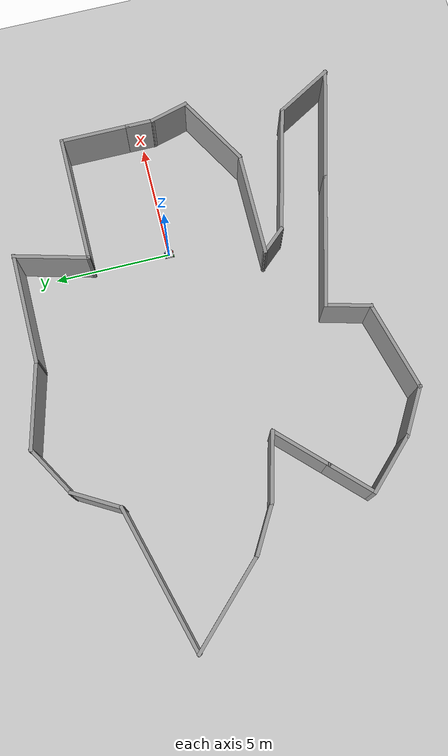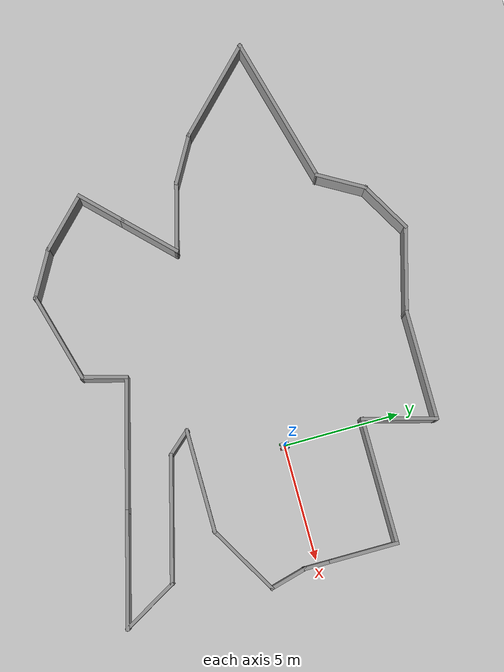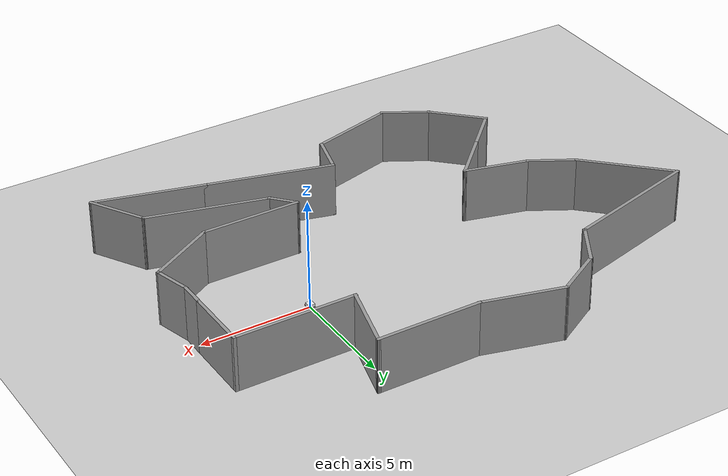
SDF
<sdf version="1.7">
 <world name="default">
  <light name="sun" type="directional">
   <pose>0 0 10 0 -0 0</pose>
   <diffuse>0.8 0.8 0.8 1</diffuse>
   <specular>0.2 0.2 0.2 1</specular>
   <attenuation>
    <range>1000</range>
    <constant>0.9</constant>
    <linear>0.01</linear>
    <quadratic>0.001</quadratic>
   </attenuation>
   <direction>-0.5 0.1 -0.9</direction>
   <spot><inner_angle>0</inner_angle><outer_angle>0</outer_angle><falloff>0</falloff></spot>
  </light>
  <model name="ground_plane">
   <static>1</static>
   <link name="link">
    <collision name="collision">
     <geometry><plane><normal>0 0 1</normal><size>100 100</size></plane></geometry>
     <surface><friction><ode><mu>100</mu><mu2>50</mu2></ode></friction></surface>
    </collision>
    <visual name="visual">
     <cast_shadows>0</cast_shadows>
     <geometry><plane><normal>0 0 1</normal><size>100 100</size></plane></geometry>
     <material>
      <script><uri>file://media/materials/scripts/gazebo.material</uri><name>Gazebo/Grey</name></script>
     </material>
    </visual>
   </link>
  </model>
  <gravity>0 0 -9.8</gravity>
  <magnetic_field>6e-06 2.3e-05 -4.2e-05</magnetic_field>
  <atmosphere type="adiabatic"/>
  <physics type="ode">
   <max_step_size>0.001</max_step_size>
   <real_time_factor>1</real_time_factor>
   <real_time_update_rate>1000</real_time_update_rate>
  </physics>
  <scene><ambient>0.4 0.4 0.4 1</ambient><background>0.7 0.7 0.7 1</background><shadows>1</shadows></scene>
  <audio><device>default</device></audio>
  <spherical_coordinates>
   <surface_model>EARTH_WGS84</surface_model>
   <latitude_deg>0</latitude_deg>
   <longitude_deg>0</longitude_deg>
   <elevation>0</elevation>
   <heading_deg>0</heading_deg>
  </spherical_coordinates>
  <model name="my_bot">
   <link name="base_link">
    <inertial>
     <pose>0 0 0.088333 0 -0 0</pose>
     <mass>0.6</mass>
     <inertia>
      <ixx>0.00530979</ixx>
      <ixy>0</ixy>
      <ixz>0</ixz>
      <iyy>0.00530979</iyy>
      <iyz>0</iyz>
      <izz>0.00751125</izz>
     </inertia>
    </inertial>
    <collision name="base_link_fixed_joint_lump__chassis_collision">
     <pose>0 0 0.075 0 -0 0</pose>
     <geometry><box><size>0.3 0.3 0.15</size></box></geometry>
    </collision>
    <collision name="base_link_fixed_joint_lump__laser_frame_collision_1">
     <pose>0 0 0.155 0 -0 0</pose>
     <geometry><cylinder><length>0.005</length><radius>0.015</radius></cylinder></geometry>
    </collision>
    <visual name="base_link_fixed_joint_lump__chassis_visual">
     <pose>0 0 0.075 0 -0 0</pose>
     <geometry><box><size>0.3 0.3 0.15</size></box></geometry>
     <material>
      <script><name>Gazebo/White</name><uri>file://media/materials/scripts/gazebo.material</uri></script>
     </material>
    </visual>
    <visual name="base_link_fixed_joint_lump__laser_frame_visual_1">
     <pose>0 0 0.155 0 -0 0</pose>
     <geometry><cylinder><length>0.005</length><radius>0.015</radius></cylinder></geometry>
     <material>
      <script><name>Gazebo/Black</name><uri>file://media/materials/scripts/gazebo.material</uri></script>
     </material>
    </visual>
    <sensor name="laser" type="ray">
     <visualize>1</visualize>
     <update_rate>10</update_rate>
     <ray>
      <scan>
       <horizontal>
        <samples>1080</samples>
        <min_angle>-3.14</min_angle>
        <max_angle>3.14</max_angle>
        <resolution>1</resolution>
       </horizontal>
       <vertical><samples>1</samples><min_angle>0</min_angle><max_angle>0</max_angle></vertical>
      </scan>
      <range><min>0.3</min><max>12</max></range>
     </ray>
     <plugin name="laser_controller" filename="libgazebo_ros_ray_sensor.so">
      <ros><argument>~/out:=scan</argument></ros>
      <output_type>sensor_msgs/LaserScan</output_type>
      <frame_name>laser_frame</frame_name>
     </plugin>
     <pose>0 0 0.155 0 -0 0</pose>
    </sensor>
   </link>
   <joint name="back_left_wheel_joint" type="revolute">
    <pose relative_to="base_link">-0.1 0.175 0 -1.5708 0 0</pose>
    <parent>base_link</parent>
    <child>back_left_wheel</child>
    <axis>
     <xyz>0 0 1</xyz>
     <limit><lower>-1e+16</lower><upper>1e+16</upper></limit>
     <dynamics><spring_reference>0</spring_reference><spring_stiffness>0</spring_stiffness></dynamics>
    </axis>
   </joint>
   <link name="back_left_wheel">
    <pose relative_to="back_left_wheel_joint">0 0 0 0 -0 0</pose>
    <inertial>
     <mass>0.1</mass>
     <inertia>
      <ixx>8.33333e-05</ixx>
      <ixy>0</ixy>
      <ixz>0</ixz>
      <iyy>8.33333e-05</iyy>
      <iyz>0</iyz>
      <izz>0.000125</izz>
     </inertia>
    </inertial>
    <collision name="back_left_wheel_collision">
     <geometry><cylinder><length>0.04</length><radius>0.05</radius></cylinder></geometry>
    </collision>
    <visual name="back_left_wheel_visual">
     <geometry><cylinder><length>0.04</length><radius>0.05</radius></cylinder></geometry>
     <material>
      <script><name>Gazebo/Gray</name><uri>file://media/materials/scripts/gazebo.material</uri></script>
     </material>
    </visual>
   </link>
   <joint name="back_right_wheel_joint" type="revolute">
    <pose relative_to="base_link">-0.1 -0.175 0 1.5708 -0 0</pose>
    <parent>base_link</parent>
    <child>back_right_wheel</child>
    <axis>
     <xyz>0 0 -1</xyz>
     <limit><lower>-1e+16</lower><upper>1e+16</upper></limit>
     <dynamics><spring_reference>0</spring_reference><spring_stiffness>0</spring_stiffness></dynamics>
    </axis>
   </joint>
   <link name="back_right_wheel">
    <pose relative_to="back_right_wheel_joint">0 0 0 0 -0 0</pose>
    <inertial>
     <mass>0.1</mass>
     <inertia>
      <ixx>8.33333e-05</ixx>
      <ixy>0</ixy>
      <ixz>0</ixz>
      <iyy>8.33333e-05</iyy>
      <iyz>0</iyz>
      <izz>0.000125</izz>
     </inertia>
    </inertial>
    <collision name="back_right_wheel_collision">
     <geometry><cylinder><length>0.04</length><radius>0.05</radius></cylinder></geometry>
    </collision>
    <visual name="back_right_wheel_visual">
     <geometry><cylinder><length>0.04</length><radius>0.05</radius></cylinder></geometry>
     <material>
      <script><name>Gazebo/Green</name><uri>file://media/materials/scripts/gazebo.material</uri></script>
     </material>
    </visual>
   </link>
   <joint name="front_left_wheel_joint" type="revolute">
    <pose relative_to="base_link">0.1 0.175 0 -1.5708 0 0</pose>
    <parent>base_link</parent>
    <child>front_left_wheel</child>
    <axis>
     <xyz>0 0 1</xyz>
     <limit><lower>-1e+16</lower><upper>1e+16</upper></limit>
     <dynamics><spring_reference>0</spring_reference><spring_stiffness>0</spring_stiffness></dynamics>
    </axis>
   </joint>
   <link name="front_left_wheel">
    <pose relative_to="front_left_wheel_joint">0 0 0 0 -0 0</pose>
    <inertial>
     <mass>0.1</mass>
     <inertia>
      <ixx>8.33333e-05</ixx>
      <ixy>0</ixy>
      <ixz>0</ixz>
      <iyy>8.33333e-05</iyy>
      <iyz>0</iyz>
      <izz>0.000125</izz>
     </inertia>
    </inertial>
    <collision name="front_left_wheel_collision">
     <geometry><cylinder><length>0.04</length><radius>0.05</radius></cylinder></geometry>
    </collision>
    <visual name="front_left_wheel_visual">
     <geometry><cylinder><length>0.04</length><radius>0.05</radius></cylinder></geometry>
     <material>
      <script><name>Gazebo/Blue</name><uri>file://media/materials/scripts/gazebo.material</uri></script>
     </material>
    </visual>
   </link>
   <joint name="front_right_wheel_joint" type="revolute">
    <pose relative_to="base_link">0.1 -0.175 0 1.5708 -0 0</pose>
    <parent>base_link</parent>
    <child>front_right_wheel</child>
    <axis>
     <xyz>0 0 -1</xyz>
     <limit><lower>-1e+16</lower><upper>1e+16</upper></limit>
     <dynamics><spring_reference>0</spring_reference><spring_stiffness>0</spring_stiffness></dynamics>
    </axis>
   </joint>
   <link name="front_right_wheel">
    <pose relative_to="front_right_wheel_joint">0 0 0 0 -0 0</pose>
    <inertial>
     <mass>0.1</mass>
     <inertia>
      <ixx>8.33333e-05</ixx>
      <ixy>0</ixy>
      <ixz>0</ixz>
      <iyy>8.33333e-05</iyy>
      <iyz>0</iyz>
      <izz>0.000125</izz>
     </inertia>
    </inertial>
    <collision name="front_right_wheel_collision">
     <geometry><cylinder><length>0.04</length><radius>0.05</radius></cylinder></geometry>
    </collision>
    <visual name="front_right_wheel_visual">
     <geometry><cylinder><length>0.04</length><radius>0.05</radius></cylinder></geometry>
     <material>
      <script><name>Gazebo/Red</name><uri>file://media/materials/scripts/gazebo.material</uri></script>
     </material>
    </visual>
   </link>
   <static>0</static>
   <plugin name="diff_drive" filename="libgazebo_ros_diff_drive.so">
    <left_joint>back_left_wheel_joint</left_joint>
    <right_joint>back_right_wheel_joint</right_joint>
    <wheel_separation>0.35</wheel_separation>
    <wheel_diameter>0.1</wheel_diameter>
    <max_wheel_torque>200</max_wheel_torque>
    <max_wheel_acceleration>10.0</max_wheel_acceleration>
    <odometry_frame>odom</odometry_frame>
    <robot_base_frame>base_link</robot_base_frame>
    <publish_odom>1</publish_odom>
    <publish_odom_tf>1</publish_odom_tf>
    <publish_wheel_tf>1</publish_wheel_tf>
   </plugin>
   <pose>0.000937 -0.000152 0.05 0 0 -0.000826</pose>
  </model>
  <model name="myWorldeiei">
   <pose>-5.50215 -0.569691 0 0 -0 0</pose>
   <link name="Wall_0">
    <collision name="Wall_0_Collision">
     <geometry><box><size>4.5 0.15 2.5</size></box></geometry>
     <pose>0 0 1.25 0 -0 0</pose>
    </collision>
    <visual name="Wall_0_Visual">
     <pose>0 0 1.25 0 -0 0</pose>
     <geometry><box><size>4.5 0.15 2.5</size></box></geometry>
     <material>
      <script><uri>file://media/materials/scripts/gazebo.material</uri><name>Gazebo/Grey</name></script>
      <ambient>1 1 1 1</ambient>
     </material>
     <meta><layer>0</layer></meta>
    </visual>
    <pose>6.04715 -3.24031 0 0 -0 0</pose>
   </link>
   <link name="Wall_1">
    <collision name="Wall_1_Collision">
     <geometry><box><size>3.5 0.15 2.5</size></box></geometry>
     <pose>0 0 1.25 0 -0 0</pose>
    </collision>
    <visual name="Wall_1_Visual">
     <pose>0 0 1.25 0 -0 0</pose>
     <geometry><box><size>3.5 0.15 2.5</size></box></geometry>
     <material>
      <script><uri>file://media/materials/scripts/gazebo.material</uri><name>Gazebo/Grey</name></script>
      <ambient>1 1 1 1</ambient>
     </material>
     <meta><layer>0</layer></meta>
    </visual>
    <pose>9.67274 -2.40281 0 0 -0 0.523599</pose>
   </link>
   <link name="Wall_10">
    <collision name="Wall_10_Collision">
     <geometry><box><size>2.25 0.15 2.5</size></box></geometry>
     <pose>0 0 1.25 0 -0 0</pose>
    </collision>
    <visual name="Wall_10_Visual">
     <pose>0 0 1.25 0 -0 0</pose>
     <geometry><box><size>2.25 0.15 2.5</size></box></geometry>
     <material>
      <script><uri>file://media/materials/scripts/gazebo.material</uri><name>Gazebo/Grey</name></script>
      <ambient>1 1 1 1</ambient>
     </material>
     <meta><layer>0</layer></meta>
    </visual>
    <pose>-4.47593 5.77196 0 0 -0 -2.0944</pose>
   </link>
   <link name="Wall_11">
    <collision name="Wall_11_Collision">
     <geometry><box><size>6.5 0.15 2.5</size></box></geometry>
     <pose>0 0 1.25 0 -0 0</pose>
    </collision>
    <visual name="Wall_11_Visual">
     <pose>0 0 1.25 0 -0 0</pose>
     <geometry><box><size>6.5 0.15 2.5</size></box></geometry>
     <material>
      <script><uri>file://media/materials/scripts/gazebo.material</uri><name>Gazebo/Grey</name></script>
      <ambient>1 1 1 1</ambient>
     </material>
     <meta><layer>0</layer></meta>
    </visual>
    <pose>-8.06775 4.04089 0 0 -0 -2.87979</pose>
   </link>
   <link name="Wall_12">
    <collision name="Wall_12_Collision">
     <geometry><box><size>4.5 0.15 2.5</size></box></geometry>
     <pose>0 0 1.25 0 -0 0</pose>
    </collision>
    <visual name="Wall_12_Visual">
     <pose>0 0 1.25 0 -0 0</pose>
     <geometry><box><size>4.5 0.15 2.5</size></box></geometry>
     <material>
      <script><uri>file://media/materials/scripts/gazebo.material</uri><name>Gazebo/Grey</name></script>
      <ambient>1 1 1 1</ambient>
     </material>
     <meta><layer>0</layer></meta>
    </visual>
    <pose>-9.59661 1.68118 0 0 -0 -0.785398</pose>
   </link>
   <link name="Wall_13">
    <collision name="Wall_13_Collision">
     <geometry><box><size>2.25 0.15 2.5</size></box></geometry>
     <pose>0 0 1.25 0 -0 0</pose>
    </collision>
    <visual name="Wall_13_Visual">
     <pose>0 0 1.25 0 -0 0</pose>
     <geometry><box><size>2.25 0.15 2.5</size></box></geometry>
     <material>
      <script><uri>file://media/materials/scripts/gazebo.material</uri><name>Gazebo/Grey</name></script>
      <ambient>1 1 1 1</ambient>
     </material>
     <meta><layer>0</layer></meta>
    </visual>
    <pose>-7.14932 -0.381777 0 0 -0 -0.523599</pose>
   </link>
   <link name="Wall_14">
    <collision name="Wall_14_Collision">
     <geometry><box><size>3 0.15 2.5</size></box></geometry>
     <pose>0 0 1.25 0 -0 0</pose>
    </collision>
    <visual name="Wall_14_Visual">
     <pose>0 0 1.25 0 -0 0</pose>
     <geometry><box><size>3 0.15 2.5</size></box></geometry>
     <material>
      <script><uri>file://media/materials/scripts/gazebo.material</uri><name>Gazebo/Grey</name></script>
      <ambient>1 1 1 1</ambient>
     </material>
     <meta><layer>0</layer></meta>
    </visual>
    <pose>-4.86355 -1.2756 0 0 -0 -0.261799</pose>
   </link>
   <link name="Wall_15">
    <collision name="Wall_15_Collision">
     <geometry><box><size>2.75 0.15 2.5</size></box></geometry>
     <pose>0 0 1.25 0 -0 0</pose>
    </collision>
    <visual name="Wall_15_Visual">
     <pose>0 0 1.25 0 -0 0</pose>
     <geometry><box><size>2.75 0.15 2.5</size></box></geometry>
     <material>
      <script><uri>file://media/materials/scripts/gazebo.material</uri><name>Gazebo/Grey</name></script>
      <ambient>1 1 1 1</ambient>
     </material>
     <meta><layer>0</layer></meta>
    </visual>
    <pose>-4.40634 -2.56365 0 0 -0 -2.35619</pose>
   </link>
   <link name="Wall_16">
    <collision name="Wall_16_Collision">
     <geometry><box><size>2.25 0.15 2.5</size></box></geometry>
     <pose>0 0 1.25 0 -0 0</pose>
    </collision>
    <visual name="Wall_16_Visual">
     <pose>0 0 1.25 0 -0 0</pose>
     <geometry><box><size>2.25 0.15 2.5</size></box></geometry>
     <material>
      <script><uri>file://media/materials/scripts/gazebo.material</uri><name>Gazebo/Grey</name></script>
      <ambient>1 1 1 1</ambient>
     </material>
     <meta><layer>0</layer></meta>
    </visual>
    <pose>-6.06805 -4.22535 0 0 -0 -2.35619</pose>
   </link>
   <link name="Wall_17">
    <collision name="Wall_17_Collision">
     <geometry><box><size>2.75 0.15 2.5</size></box></geometry>
     <pose>0 0 1.25 0 -0 0</pose>
    </collision>
    <visual name="Wall_17_Visual">
     <pose>0 0 1.25 0 -0 0</pose>
     <geometry><box><size>2.75 0.15 2.5</size></box></geometry>
     <material>
      <script><uri>file://media/materials/scripts/gazebo.material</uri><name>Gazebo/Grey</name></script>
      <ambient>1 1 1 1</ambient>
     </material>
     <meta><layer>0</layer></meta>
    </visual>
    <pose>-5.89127 -5.88705 0 0 -0 -0.785398</pose>
   </link>
   <link name="Wall_18">
    <collision name="Wall_18_Collision">
     <geometry><box><size>2.25 0.15 2.5</size></box></geometry>
     <pose>0 0 1.25 0 -0 0</pose>
    </collision>
    <visual name="Wall_18_Visual">
     <pose>0 0 1.25 0 -0 0</pose>
     <geometry><box><size>2.25 0.15 2.5</size></box></geometry>
     <material>
      <script><uri>file://media/materials/scripts/gazebo.material</uri><name>Gazebo/Grey</name></script>
      <ambient>1 1 1 1</ambient>
     </material>
     <meta><layer>0</layer></meta>
    </visual>
    <pose>-4.0627 -7.33129 0 0 -0 -0.523599</pose>
   </link>
   <link name="Wall_19">
    <collision name="Wall_19_Collision">
     <geometry><box><size>4 0.15 2.5</size></box></geometry>
     <pose>0 0 1.25 0 -0 0</pose>
    </collision>
    <visual name="Wall_19_Visual">
     <pose>0 0 1.25 0 -0 0</pose>
     <geometry><box><size>4 0.15 2.5</size></box></geometry>
     <material>
      <script><uri>file://media/materials/scripts/gazebo.material</uri><name>Gazebo/Grey</name></script>
      <ambient>1 1 1 1</ambient>
     </material>
     <meta><layer>0</layer></meta>
    </visual>
    <pose>-1.29397 -7.35806 0 0 -0 0.261799</pose>
   </link>
   <link name="Wall_2">
    <collision name="Wall_2_Collision">
     <geometry><box><size>1.75 0.15 2.5</size></box></geometry>
     <pose>0 0 1.25 0 -0 0</pose>
    </collision>
    <visual name="Wall_2_Visual">
     <pose>0 0 1.25 0 -0 0</pose>
     <geometry><box><size>1.75 0.15 2.5</size></box></geometry>
     <material>
      <script><uri>file://media/materials/scripts/gazebo.material</uri><name>Gazebo/Grey</name></script>
      <ambient>1 1 1 1</ambient>
     </material>
     <meta><layer>0</layer></meta>
    </visual>
    <pose>10.9163 -0.792568 0 0 -0 1.8326</pose>
   </link>
   <link name="Wall_20">
    <collision name="Wall_20_Collision">
     <geometry><box><size>2 0.15 2.5</size></box></geometry>
     <pose>0 0 1.25 0 -0 0</pose>
    </collision>
    <visual name="Wall_20_Visual">
     <pose>0 0 1.25 0 -0 0</pose>
     <geometry><box><size>2 0.15 2.5</size></box></geometry>
     <material>
      <script><uri>file://media/materials/scripts/gazebo.material</uri><name>Gazebo/Grey</name></script>
      <ambient>1 1 1 1</ambient>
     </material>
     <meta><layer>0</layer></meta>
    </visual>
    <pose>0.804845 -5.96636 0 0 -0 1.309</pose>
   </link>
   <link name="Wall_21">
    <collision name="Wall_21_Collision">
     <geometry><box><size>5.75 0.15 2.5</size></box></geometry>
     <pose>0 0 1.25 0 -0 0</pose>
    </collision>
    <visual name="Wall_21_Visual">
     <pose>0 0 1.25 0 -0 0</pose>
     <geometry><box><size>5.75 0.15 2.5</size></box></geometry>
     <material>
      <script><uri>file://media/materials/scripts/gazebo.material</uri><name>Gazebo/Grey</name></script>
      <ambient>1 1 1 1</ambient>
     </material>
     <meta><layer>0</layer></meta>
    </visual>
    <pose>3.74885 -5.79757 0 0 -0 -0.261799</pose>
   </link>
   <link name="Wall_22">
    <collision name="Wall_22_Collision">
     <geometry><box><size>5 0.15 2.5</size></box></geometry>
     <pose>0 0 1.25 0 -0 0</pose>
    </collision>
    <visual name="Wall_22_Visual">
     <pose>0 0 1.25 0 -0 0</pose>
     <geometry><box><size>5 0.15 2.5</size></box></geometry>
     <material>
      <script><uri>file://media/materials/scripts/gazebo.material</uri><name>Gazebo/Grey</name></script>
      <ambient>1 1 1 1</ambient>
     </material>
     <meta><layer>0</layer></meta>
    </visual>
    <pose>8.79581 -7.1499 0 0 -0 -0.261799</pose>
   </link>
   <link name="Wall_23">
    <collision name="Wall_23_Collision">
     <geometry><box><size>2.75 0.15 2.5</size></box></geometry>
     <pose>0 0 1.25 0 -0 0</pose>
    </collision>
    <visual name="Wall_23_Visual">
     <pose>0 0 1.25 0 -0 0</pose>
     <geometry><box><size>2.75 0.15 2.5</size></box></geometry>
     <material>
      <script><uri>file://media/materials/scripts/gazebo.material</uri><name>Gazebo/Grey</name></script>
      <ambient>1 1 1 1</ambient>
     </material>
     <meta><layer>0</layer></meta>
    </visual>
    <pose>10.4882 -6.6517 0 0 -0 2.0944</pose>
   </link>
   <link name="Wall_24">
    <collision name="Wall_24_Collision">
     <geometry><box><size>5.5 0.15 2.5</size></box></geometry>
     <pose>0 0 1.25 0 -0 0</pose>
    </collision>
    <visual name="Wall_24_Visual">
     <pose>0 0 1.25 0 -0 0</pose>
     <geometry><box><size>5.5 0.15 2.5</size></box></geometry>
     <material>
      <script><uri>file://media/materials/scripts/gazebo.material</uri><name>Gazebo/Grey</name></script>
      <ambient>1 1 1 1</ambient>
     </material>
     <meta><layer>0</layer></meta>
    </visual>
    <pose>7.25433 -4.83353 0 0 -0 2.87979</pose>
   </link>
   <link name="Wall_25">
    <collision name="Wall_25_Collision">
     <geometry><box><size>1.35371 0.15 2.5</size></box></geometry>
     <pose>0 0 1.25 0 -0 0</pose>
    </collision>
    <visual name="Wall_25_Visual">
     <pose>0 0 1.25 0 -0 0</pose>
     <geometry><box><size>1.35371 0.15 2.5</size></box></geometry>
     <material>
      <script><uri>file://media/materials/scripts/gazebo.material</uri><name>Gazebo/Grey</name></script>
      <ambient>1 1 1 1</ambient>
     </material>
     <meta><layer>0</layer></meta>
    </visual>
    <pose>4.27131 -3.69075 0 0 -0 2.29592</pose>
   </link>
   <link name="Wall_3">
    <collision name="Wall_3_Collision">
     <geometry><box><size>1.25 0.15 2.5</size></box></geometry>
     <pose>0 0 1.25 0 -0 0</pose>
    </collision>
    <visual name="Wall_3_Visual">
     <pose>0 0 1.25 0 -0 0</pose>
     <geometry><box><size>1.25 0.15 2.5</size></box></geometry>
     <material>
      <script><uri>file://media/materials/scripts/gazebo.material</uri><name>Gazebo/Grey</name></script>
      <ambient>1 1 1 1</ambient>
     </material>
     <meta><layer>0</layer></meta>
    </visual>
    <pose>10.7092 0.530173 0 0 -0 1.5708</pose>
   </link>
   <link name="Wall_4">
    <collision name="Wall_4_Collision">
     <geometry><box><size>3 0.15 2.5</size></box></geometry>
     <pose>0 0 1.25 0 -0 0</pose>
    </collision>
    <visual name="Wall_4_Visual">
     <pose>0 0 1.25 0 -0 0</pose>
     <geometry><box><size>3 0.15 2.5</size></box></geometry>
     <material>
      <script><uri>file://media/materials/scripts/gazebo.material</uri><name>Gazebo/Grey</name></script>
      <ambient>1 1 1 1</ambient>
     </material>
     <meta><layer>0</layer></meta>
    </visual>
    <pose>10.7092 2.50517 0 0 -0 1.5708</pose>
   </link>
   <link name="Wall_5">
    <collision name="Wall_5_Collision">
     <geometry><box><size>5.5 0.15 2.5</size></box></geometry>
     <pose>0 0 1.25 0 -0 0</pose>
    </collision>
    <visual name="Wall_5_Visual">
     <pose>0 0 1.25 0 -0 0</pose>
     <geometry><box><size>5.5 0.15 2.5</size></box></geometry>
     <material>
      <script><uri>file://media/materials/scripts/gazebo.material</uri><name>Gazebo/Grey</name></script>
      <ambient>1 1 1 1</ambient>
     </material>
     <meta><layer>0</layer></meta>
    </visual>
    <pose>8.03422 3.93017 0 0 -0 3.14159</pose>
   </link>
   <link name="Wall_6">
    <collision name="Wall_6_Collision">
     <geometry><box><size>3.25 0.15 2.5</size></box></geometry>
     <pose>0 0 1.25 0 -0 0</pose>
    </collision>
    <visual name="Wall_6_Visual">
     <pose>0 0 1.25 0 -0 0</pose>
     <geometry><box><size>3.25 0.15 2.5</size></box></geometry>
     <material>
      <script><uri>file://media/materials/scripts/gazebo.material</uri><name>Gazebo/Grey</name></script>
      <ambient>1 1 1 1</ambient>
     </material>
     <meta><layer>0</layer></meta>
    </visual>
    <pose>5.76039 5.42736 0 0 -0 1.309</pose>
   </link>
   <link name="Wall_7">
    <collision name="Wall_7_Collision">
     <geometry><box><size>4.75 0.15 2.5</size></box></geometry>
     <pose>0 0 1.25 0 -0 0</pose>
    </collision>
    <visual name="Wall_7_Visual">
     <pose>0 0 1.25 0 -0 0</pose>
     <geometry><box><size>4.75 0.15 2.5</size></box></geometry>
     <material>
      <script><uri>file://media/materials/scripts/gazebo.material</uri><name>Gazebo/Grey</name></script>
      <ambient>1 1 1 1</ambient>
     </material>
     <meta><layer>0</layer></meta>
    </visual>
    <pose>3.86156 6.92454 0 0 -0 3.14159</pose>
   </link>
   <link name="Wall_8">
    <collision name="Wall_8_Collision">
     <geometry><box><size>3.75 0.15 2.5</size></box></geometry>
     <pose>0 0 1.25 0 -0 0</pose>
    </collision>
    <visual name="Wall_8_Visual">
     <pose>0 0 1.25 0 -0 0</pose>
     <geometry><box><size>3.75 0.15 2.5</size></box></geometry>
     <material>
      <script><uri>file://media/materials/scripts/gazebo.material</uri><name>Gazebo/Grey</name></script>
      <ambient>1 1 1 1</ambient>
     </material>
     <meta><layer>0</layer></meta>
    </visual>
    <pose>-0.177107 7.39042 0 0 -0 2.87979</pose>
   </link>
   <link name="Wall_9">
    <collision name="Wall_9_Collision">
     <geometry><box><size>2.5 0.15 2.5</size></box></geometry>
     <pose>0 0 1.25 0 -0 0</pose>
    </collision>
    <visual name="Wall_9_Visual">
     <pose>0 0 1.25 0 -0 0</pose>
     <geometry><box><size>2.5 0.15 2.5</size></box></geometry>
     <material>
      <script><uri>file://media/materials/scripts/gazebo.material</uri><name>Gazebo/Grey</name></script>
      <ambient>1 1 1 1</ambient>
     </material>
     <meta><layer>0</layer></meta>
    </visual>
    <pose>-2.93335 7.26879 0 0 -0 -2.61799</pose>
   </link>
   <static>1</static>
  </model>
 </world>
</sdf>
